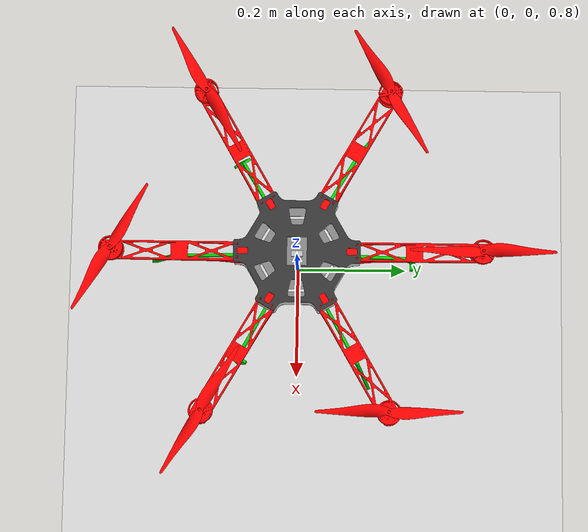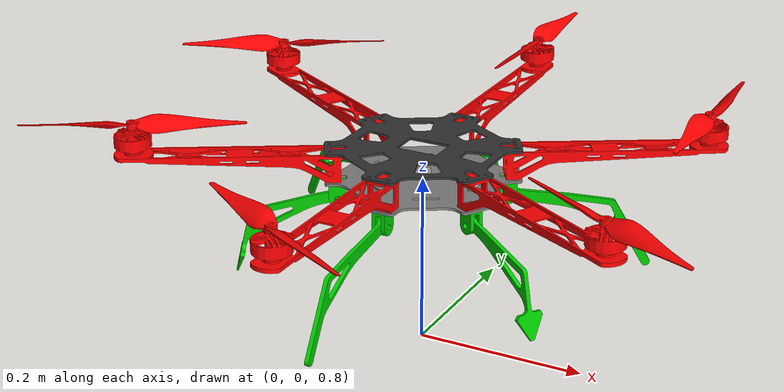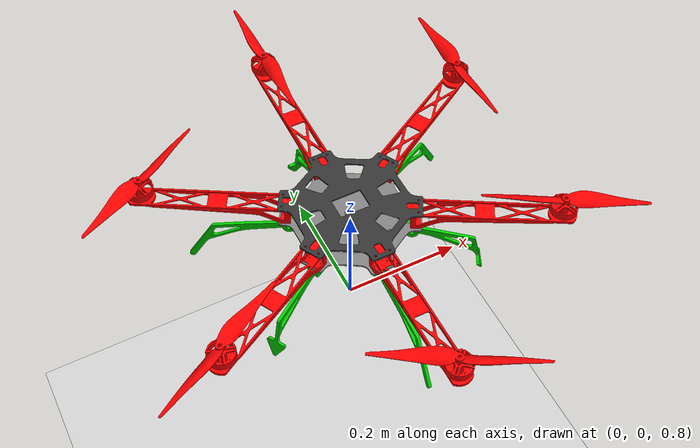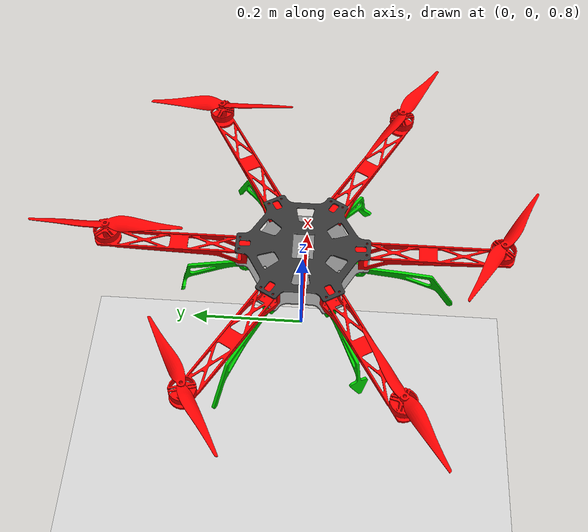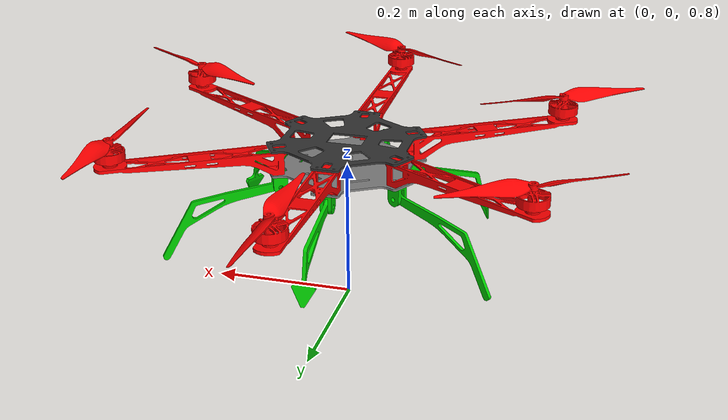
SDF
<?xml version="1.0"?>
<sdf version="1.9">
  <world name="default">
    <!-- Spherical coordinates for GPS -->
    <spherical_coordinates>
      <surface_model>EARTH_WGS84</surface_model>
      <latitude_deg>37.4223</latitude_deg>
      <longitude_deg>-122.0844</longitude_deg>
      <elevation>0</elevation>
      <heading_deg>0</heading_deg>
    </spherical_coordinates>

    <!-- Add proper lighting -->
    <light type="directional" name="sun">
      <cast_shadows>true</cast_shadows>
      <pose>0 0 10 0 0 0</pose>
      <diffuse>0.8 0.8 0.8 1</diffuse>
      <specular>0.2 0.2 0.2 1</specular>
      <attenuation>
        <range>1000</range>
        <constant>0.9</constant>
        <linear>0.01</linear>
        <quadratic>0.001</quadratic>
      </attenuation>
      <direction>-0.5 0.1 -0.9</direction>
    </light>

    <!-- Add ground plane -->
    <model name="ground_plane">
      <static>true</static>
      <link name="link">
        <collision name="collision">
          <geometry>
            <plane>
              <normal>0 0 1</normal>
              <size>100 100</size>
            </plane>
          </geometry>
        </collision>
        <visual name="visual">
          <geometry>
            <plane>
              <normal>0 0 1</normal>
              <size>100 100</size>
            </plane>
          </geometry>
          <material>
            <ambient>0.8 0.8 0.8 1</ambient>
            <diffuse>0.8 0.8 0.8 1</diffuse>
            <specular>0.8 0.8 0.8 1</specular>
          </material>
        </visual>
      </link>
    </model>

    <!-- Add sky and scene settings -->
    <scene>
      <sky>
        <clouds>
          <speed>12</speed>
        </clouds>
      </sky>
      <ambient>0.4 0.4 0.4 1</ambient>
      <background>0.7 0.7 1.0 1</background>
      <shadows>true</shadows>
    </scene>

    <!-- Your hexacopter -->
    <include>
      <uri>file://f550</uri>
      <pose>0 0 1.0 0 0 0</pose>
    </include>

  </world>
</sdf>

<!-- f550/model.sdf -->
<sdf version="1.9">
  <model name="f550">
    <static>false</static>
    <pose>0 0 0 0 0 0</pose>

<!-- ######################################## LOWER_PLATE # ######################################## -->
    <link name="base_link">
	<gravity>true</gravity>
	<pose>0 0 0.0015 0 0 0</pose>

      <inertial>
  <pose>0.00 0 -0.00 0 -0 0</pose>
        <mass>0.6</mass>
        <inertia>
          <ixx>0.011</ixx>
          <ixy>0</ixy>
          <ixz>0</ixz>
          <iyy>0.015</iyy>
          <iyz>0</iyz>
          <izz>0.021</izz>
        </inertia>
      </inertial>

      <collision name="base_link_collision">
        <geometry>
          <cylinder>
            <radius>0.15</radius>
            <length>0.003</length>
          </cylinder>
        </geometry>
      </collision>

      <visual name="base_link_visual">
        <geometry>
          <mesh>
            <scale>0.001 0.001 0.001</scale>
            <uri>file://f550/meshes/Lower_plate_CG.STL</uri>
          </mesh>
        </geometry>
        <material>
          <ambient>0.3 0.3 0.3 1</ambient>
          <diffuse>0.5 0.5 0.5 1</diffuse>
          <specular>0.8 0.8 0.8 1</specular>
        </material>
      </visual>

      <!-- IMU Sensor at ~200 Hz -->
      <sensor name="imu_sensor" type="imu">
        <pose>0 0 0.02 0 0 0</pose>
        <always_on>true</always_on>
        <update_rate>200</update_rate>
        <imu>
          <angular_velocity>
            <x>
              <noise type="gaussian">
                <mean>0.0</mean>
                <stddev>2e-4</stddev>
              </noise>
            </x>
            <y>
              <noise type="gaussian">
                <mean>0.0</mean>
                <stddev>2e-4</stddev>
              </noise>
            </y>
            <z>
              <noise type="gaussian">
                <mean>0.0</mean>
                <stddev>2e-4</stddev>
              </noise>
            </z>
          </angular_velocity>
          <linear_acceleration>
            <x>
              <noise type="gaussian">
                <mean>0.0</mean>
                <stddev>1.7e-2</stddev>
              </noise>
            </x>
            <y>
              <noise type="gaussian">
                <mean>0.0</mean>
                <stddev>1.7e-2</stddev>
              </noise>
            </y>
            <z>
              <noise type="gaussian">
                <mean>0.0</mean>
                <stddev>1.7e-2</stddev>
              </noise>
            </z>
          </linear_acceleration>
        </imu>
      </sensor>

      <!-- Air Pressure Sensor (Barometer) at ~50 Hz -->
      <sensor name="air_pressure_sensor" type="air_pressure">
        <pose>0 0 0.025 0 0 0</pose>
        <always_on>true</always_on>
        <update_rate>50</update_rate>
        <air_pressure>
          <reference_altitude>0</reference_altitude>
        </air_pressure>
      </sensor>

      <!-- GPS/NavSat Sensor at ~10 Hz -->
      <sensor name="gps_sensor" type="navsat">
        <pose>0 0 0.03 0 0 0</pose>
        <always_on>true</always_on>
        <update_rate>10</update_rate>
        <navsat>
          <position_sensing>
            <horizontal>
              <noise type="gaussian">
                <mean>0.0</mean>
                <stddev>1.0</stddev>
              </noise>
            </horizontal>
            <vertical>
              <noise type="gaussian">
                <mean>0.0</mean>
                <stddev>1.0</stddev>
              </noise>
            </vertical>
          </position_sensing>
          <velocity_sensing>
            <horizontal>
              <noise type="gaussian">
                <mean>0.0</mean>
                <stddev>0.1</stddev>
              </noise>
            </horizontal>
            <vertical>
              <noise type="gaussian">
                <mean>0.0</mean>
                <stddev>0.1</stddev>
              </noise>
            </vertical>
          </velocity_sensing>
        </navsat>
      </sensor>

      <!-- RGB Camera Sensor at ~15 Hz -->
    </link>
<!-- ####################################### /LOWER_PLATE # ######################################## -->

<!-- ######################################## TOP_PLATE ############################################ -->
    <link name="Top_plate_link">
	<gravity>true</gravity>
	<pose>0 0 0.0375 0 0 2.09439510239</pose>

      <inertial>
        <mass>0.1</mass>
        <inertia>
          <ixx>0.001</ixx>
          <ixy>0</ixy>
          <ixz>0</ixz>
          <iyy>0.001</iyy>
          <iyz>0</iyz>
          <izz>0.001</izz>
        </inertia>
      </inertial>

      <collision name="top_plate_collision">
        <geometry>
          <cylinder>
            <radius>0.12</radius>
            <length>0.003</length>
          </cylinder>
        </geometry>
      </collision>

      <visual name="visual_Top_plate">
        <geometry>
          <mesh>
            <scale>0.001 0.001 0.001</scale>
            <uri>file://f550/meshes/Top_plate_CG.STL</uri>
          </mesh>
        </geometry>
        <material>
          <ambient>0.1 0.1 0.1 1</ambient>
          <diffuse>0.2 0.2 0.2 1</diffuse>
          <specular>0.9 0.9 0.9 1</specular>
        </material>
      </visual>
    </link>

	<joint name='Lower_Top_joint' type='fixed'>
	  	<child>Top_plate_link</child>
	  	<parent>base_link</parent>
	</joint>
<!-- ####################################### /TOP_PLATE ############################################ -->

<!-- ##########################################  CAMERA  ########################################### -->

<!-- ##########################################  /CAMERA  ########################################## -->

<!-- ##########################################  IMU  ############################################## -->
    <link name='imu_link'>
      <pose>0 0 0 0 0 3.1415927</pose>
      <inertial>
        <pose>0 0 0 0 -0 0</pose>
        <mass>0.015</mass>
        <inertia>
          <ixx>1e-05</ixx>
          <ixy>0</ixy>
          <ixz>0</ixz>
          <iyy>1e-05</iyy>
          <iyz>0</iyz>
          <izz>1e-05</izz>
        </inertia>
      </inertial>

      <visual name="visual_imu">
	      <pose>0 0 0 0 0 3.1415927</pose>
        <geometry>
          <box>
			<size>0.01 0.02 0.02</size>
          </box>
        </geometry>
      </visual>
    </link>

    <joint name='imu_joint' type='fixed'>
      <child>imu_link</child>
      <parent>base_link</parent>
    </joint>
<!-- #########################################  /IMU  ############################################## -->

<!-- ############################################# ARM1 ############################################ -->
    <link name="Arm1_link">
	<gravity>true</gravity>
	<pose>0 0.1874 0.009875004 0 0 1.57079632679</pose>

	<inertial>
	<mass>0.1</mass>
		<inertia>
			<ixx>0.001</ixx>
			<ixy>0</ixy>
			<ixz>0</ixz>
			<iyy>0.001</iyy>
			<iyz>0</iyz>
			<izz>0.001</izz>
		</inertia>
	</inertial>

	<collision name="collision_Arm1_box">
		<pose>-0.02 0 0.009 0 0 0</pose>
		<geometry>
			<box>
				<size>0.175 0.034 0.037</size>
			</box>
		</geometry>
	</collision>

	<collision name="collision_Arm1_cyl">
		<pose>0.09 0 0.02 0 0 0</pose>
		<geometry>
			<cylinder>
				<length>0.097</length>
				<radius>0.02</radius>
			</cylinder>
		</geometry>
	</collision>

	<collision name="collision_Arm1_motor">
		<pose>0.165 0 0.05 0 0 0</pose>
		<geometry>
			<cylinder>
				<length>0.03</length>
				<radius>0.014</radius>
			</cylinder>
		</geometry>
	</collision>

		<visual name="visual_Arm1">
			<geometry>
				<mesh>
					<scale>0.001 0.001 0.001</scale>
					<uri>file://f550/meshes/Arm_CG.STL</uri>
				</mesh>
			</geometry>
			<material>
        <ambient>0.8 0.0 0.0 1</ambient>
        <diffuse>1.0 0.0 0.0 1</diffuse>
        <specular>0.5 0.5 0.5 1</specular>
      </material>
		</visual>
	</link>

	<joint name='Lower_Arm1_joint' type='fixed'>
	  	<child>Arm1_link</child>
	  	<parent>base_link</parent>
	</joint>
<!-- ############################################ /ARM1 ############################################ -->

<!-- ############################################# ARM2 ############################################ -->
    <link name="Arm2_link">
	<gravity>true</gravity>
	<pose>0.162293160669 0.0937 0.009875004 0 0 0.523598775598</pose>

      <inertial>
        <mass>0.1</mass>
        <inertia>
          <ixx>0.001</ixx>
          <ixy>0</ixy>
          <ixz>0</ixz>
          <iyy>0.001</iyy>
          <iyz>0</iyz>
          <izz>0.001</izz>
        </inertia>
      </inertial>

      <collision name="collision_Arm2_box">
        <pose>-0.02 0 0.009 0 0 0</pose>
        <geometry>
          <box>
            <size>0.175 0.034 0.037</size>
          </box>
        </geometry>
      </collision>

      <collision name="collision_Arm2_cyl">
        <pose>0.09 0 0.02 0 0 0</pose>
        <geometry>
          <cylinder>
            <length>0.097</length>
            <radius>0.02</radius>
          </cylinder>
        </geometry>
      </collision>

      <collision name="collision_Arm2_motor">
        <pose>0.165 0 0.05 0 0 0</pose>
        <geometry>
          <cylinder>
            <length>0.03</length>
            <radius>0.014</radius>
          </cylinder>
        </geometry>
      </collision>

      <visual name="visual_Arm2">
        <geometry>
          <mesh>
            <scale>0.001 0.001 0.001</scale>
            <uri>file://f550/meshes/Arm_CG.STL</uri>
          </mesh>
        </geometry>
        <material>
          <ambient>0.8 0.0 0.0 1</ambient>
          <diffuse>1.0 0.0 0.0 1</diffuse>
          <specular>0.5 0.5 0.5 1</specular>
        </material>
      </visual>
    </link>

	<joint name='Lower_Arm2_joint' type='fixed'>
	  	<child>Arm2_link</child>
	  	<parent>base_link</parent>
	</joint>
<!-- ############################################ /ARM2 ############################################ -->

<!-- ############################################# ARM3 ############################################ -->
    <link name="Arm3_link">
	<gravity>true</gravity>
	<pose>0.162293160669 -0.0937 0.009875004 0 0 -0.523598775598</pose>

      <inertial>
        <mass>0.1</mass>
        <inertia>
          <ixx>0.001</ixx>
          <ixy>0</ixy>
          <ixz>0</ixz>
          <iyy>0.001</iyy>
          <iyz>0</iyz>
          <izz>0.001</izz>
        </inertia>
      </inertial>

      <collision name="collision_Arm3_box">
        <pose>-0.02 0 0.009 0 0 0</pose>
        <geometry>
          <box>
            <size>0.175 0.034 0.037</size>
          </box>
        </geometry>
      </collision>

      <collision name="collision_Arm3_cyl">
        <pose>0.09 0 0.02 0 0 0</pose>
        <geometry>
          <cylinder>
            <length>0.097</length>
            <radius>0.02</radius>
          </cylinder>
        </geometry>
      </collision>

      <collision name="collision_Arm3_motor">
        <pose>0.165 0 0.05 0 0 0</pose>
        <geometry>
          <cylinder>
            <length>0.03</length>
            <radius>0.014</radius>
          </cylinder>
        </geometry>
      </collision>

      <visual name="visual_Arm3">
        <geometry>
          <mesh>
            <scale>0.001 0.001 0.001</scale>
            <uri>file://f550/meshes/Arm_CG.STL</uri>
          </mesh>
        </geometry>
        <material>
          <ambient>0.8 0.0 0.0 1</ambient>
          <diffuse>1.0 0.0 0.0 1</diffuse>
          <specular>0.5 0.5 0.5 1</specular>
        </material>
      </visual>
    </link>

	<joint name='Lower_Arm3_joint' type='fixed'>
	  	<child>Arm3_link</child>
	  	<parent>base_link</parent>
	</joint>
<!-- ############################################ /ARM3 ############################################ -->

<!-- ############################################# ARM4 ############################################ -->
    <link name="Arm4_link">
	<gravity>true</gravity>
	<pose>0 -0.1874 0.009875004 0 0 -1.57079632679</pose>

      <inertial>
        <mass>0.1</mass>
        <inertia>
          <ixx>0.001</ixx>
          <ixy>0</ixy>
          <ixz>0</ixz>
          <iyy>0.001</iyy>
          <iyz>0</iyz>
          <izz>0.001</izz>
        </inertia>
      </inertial>

      <collision name="collision_Arm4_box">
        <pose>-0.02 0 0.009 0 0 0</pose>
        <geometry>
          <box>
            <size>0.175 0.034 0.037</size>
          </box>
        </geometry>
      </collision>

      <collision name="collision_Arm4_cyl">
        <pose>0.09 0 0.02 0 0 0</pose>
        <geometry>
          <cylinder>
            <length>0.097</length>
            <radius>0.02</radius>
          </cylinder>
        </geometry>
      </collision>

      <collision name="collision_Arm4_motor">
        <pose>0.165 0 0.05 0 0 0</pose>
        <geometry>
          <cylinder>
            <length>0.03</length>
            <radius>0.014</radius>
          </cylinder>
        </geometry>
      </collision>

      <visual name="visual_Arm4">
        <geometry>
          <mesh>
            <scale>0.001 0.001 0.001</scale>
            <uri>file://f550/meshes/Arm_CG.STL</uri>
          </mesh>
        </geometry>
        <material>
          <ambient>0.8 0.0 0.0 1</ambient>
          <diffuse>1.0 0.0 0.0 1</diffuse>
          <specular>0.5 0.5 0.5 1</specular>
        </material>
      </visual>
    </link>

	<joint name='Lower_Arm4_joint' type='fixed'>
	  	<child>Arm4_link</child>
	  	<parent>base_link</parent>
	</joint>
<!-- ############################################ /ARM4 ############################################ -->

<!-- ############################################# ARM5 ############################################ -->
    <link name="Arm5_link">
	<gravity>true</gravity>
	<pose>-0.162293160669 -0.0937 0.009875004 0 0 3.66519142919</pose>

      <inertial>
        <mass>0.1</mass>
        <inertia>
          <ixx>0.001</ixx>
          <ixy>0</ixy>
          <ixz>0</ixz>
          <iyy>0.001</iyy>
          <iyz>0</iyz>
          <izz>0.001</izz>
        </inertia>
      </inertial>

      <collision name="collision_Arm5_box">
        <pose>-0.02 0 0.009 0 0 0</pose>
        <geometry>
          <box>
            <size>0.175 0.034 0.037</size>
          </box>
        </geometry>
      </collision>

      <collision name="collision_Arm5_cyl">
        <pose>0.09 0 0.02 0 0 0</pose>
        <geometry>
          <cylinder>
            <length>0.097</length>
            <radius>0.02</radius>
          </cylinder>
        </geometry>
      </collision>

      <collision name="collision_Arm5_motor">
        <pose>0.165 0 0.05 0 0 0</pose>
        <geometry>
          <cylinder>
            <length>0.03</length>
            <radius>0.014</radius>
          </cylinder>
        </geometry>
      </collision>

      <visual name="visual_Arm5">
        <geometry>
          <mesh>
            <scale>0.001 0.001 0.001</scale>
            <uri>file://f550/meshes/Arm_CG.STL</uri>
          </mesh>
        </geometry>
        <material>
          <ambient>0.8 0.0 0.0 1</ambient>
          <diffuse>1.0 0.0 0.0 1</diffuse>
          <specular>0.5 0.5 0.5 1</specular>
        </material>
      </visual>
    </link>

	<joint name='Lower_Arm5_joint' type='fixed'>
	  	<child>Arm5_link</child>
	  	<parent>base_link</parent>
	</joint>
<!-- ############################################ /ARM5 ############################################ -->

<!-- ############################################# ARM6 ############################################ -->
    <link name="Arm6_link">
	<gravity>true</gravity>
	<pose>-0.162293160669 0.0937 0.009875004 0 0 2.61799387799</pose>

      <inertial>
        <mass>0.1</mass>
        <inertia>
          <ixx>0.001</ixx>
          <ixy>0</ixy>
          <ixz>0</ixz>
          <iyy>0.001</iyy>
          <iyz>0</iyz>
          <izz>0.001</izz>
        </inertia>
      </inertial>

      <collision name="collision_Arm6_box">
        <pose>-0.02 0 0.009 0 0 0</pose>
        <geometry>
          <box>
            <size>0.175 0.034 0.037</size>
          </box>
        </geometry>
      </collision>

      <collision name="collision_Arm6_cyl">
        <pose>0.09 0 0.02 0 0 0</pose>
        <geometry>
          <cylinder>
            <length>0.097</length>
            <radius>0.02</radius>
          </cylinder>
        </geometry>
      </collision>

      <collision name="collision_Arm6_motor">
        <pose>0.165 0 0.05 0 0 0</pose>
        <geometry>
          <cylinder>
            <length>0.03</length>
            <radius>0.014</radius>
          </cylinder>
        </geometry>
      </collision>

      <visual name="visual_Arm6">
        <geometry>
          <mesh>
            <scale>0.001 0.001 0.001</scale>
            <uri>file://f550/meshes/Arm_CG.STL</uri>
          </mesh>
        </geometry>
        <material>
          <ambient>0.8 0.0 0.0 1</ambient>
          <diffuse>1.0 0.0 0.0 1</diffuse>
          <specular>0.5 0.5 0.5 1</specular>
        </material>
      </visual>
    </link>

	<joint name='Lower_Arm6_joint' type='fixed'>
	  	<child>Arm6_link</child>
	  	<parent>base_link</parent>
	</joint>
<!-- ############################################ /ARM6 ############################################ -->

<!-- #########################################  ROTOR0  ############################################ -->
<link name='rotor_0'>
  <pose>-0.279726205 0.1615 0.07 0 0 2.09439510239</pose>
      <inertial>
        <mass>0.005</mass>
        <inertia>
          <ixx>9.75e-07</ixx>
          <ixy>0</ixy>
          <ixz>0</ixz>
          <iyy>0.000273104</iyy>
          <iyz>0</iyz>
          <izz>0.000274004</izz>
        </inertia>
      </inertial>

	  <collision name='rotor_0_collision'>
        <geometry>
          <cylinder>
            <length>0.005</length>
            <radius>0.128</radius>
          </cylinder>
        </geometry>
        <surface>
          <contact>
            <ode/>
          </contact>
          <friction>
            <ode/>
          </friction>
        </surface>
      </collision>

      <visual name='rotor_0_visual'>
        <geometry>
          <mesh>
            <scale>0.001 0.001 0.001</scale>
            <uri>file://f550/meshes/prop_cw_CG.stl</uri>
          </mesh>
        </geometry>
        <material>
          <ambient>0.8 0.0 0.0 1</ambient>
          <diffuse>1.0 0.0 0.0 1</diffuse>
          <specular>0.5 0.5 0.5 1</specular>
        </material>
      </visual>
    </link>

    <joint name='rotor_0_joint' type='revolute'>
      <child>rotor_0</child>
      <parent>base_link</parent>
      <axis>
  <xyz expressed_in="__model__">0 0 1</xyz>
        <limit>
          <lower>-1e+16</lower>
          <upper>1e+16</upper>
          <!-- Increased effort limit to avoid artificial torque saturation during spin-up/control -->
          <effort>100000</effort>
          <!-- Set a large positive velocity limit to avoid artificial clamping -->
          <velocity>4000</velocity>
        </limit>
        <dynamics>
          <damping>0.005</damping>
        </dynamics>
      </axis>
      <physics>
        <ode>
          <implicit_spring_damper>1</implicit_spring_damper>
        </ode>
      </physics>
    </joint>
<!-- ########################################  /ROTOR0  ############################################ -->

<!-- #########################################  ROTOR1  ############################################ -->
<link name='rotor_1'>
  <pose>0.279726205 -0.1615 0.07 0 0 -2.09439510239</pose>
      <inertial>
        <mass>0.005</mass>
        <inertia>
          <ixx>9.75e-07</ixx>
          <ixy>0</ixy>
          <ixz>0</ixz>
          <iyy>0.000273104</iyy>
          <iyz>0</iyz>
          <izz>0.000274004</izz>
        </inertia>
      </inertial>

      <collision name='rotor_1_collision'>
        <geometry>
          <cylinder>
            <length>0.005</length>
            <radius>0.128</radius>
          </cylinder>
        </geometry>
        <surface>
          <contact>
            <ode/>
          </contact>
          <friction>
            <ode/>
          </friction>
        </surface>
      </collision>

      <visual name='rotor_1_visual'>
        <geometry>
          <mesh>
            <scale>0.001 0.001 0.001</scale>
            <uri>file://f550/meshes/prop_ccw_CG.stl</uri>
          </mesh>
        </geometry>
        <material>
          <ambient>0.8 0.0 0.0 1</ambient>
          <diffuse>1.0 0.0 0.0 1</diffuse>
          <specular>0.5 0.5 0.5 1</specular>
        </material>
      </visual>
    </link>

    <joint name='rotor_1_joint' type='revolute'>
      <child>rotor_1</child>
      <parent>base_link</parent>
      <axis>
  <xyz expressed_in="__model__">0 0 1</xyz>
        <limit>
          <lower>-1e+16</lower>
          <upper>1e+16</upper>
          <effort>100000</effort>
          <velocity>4000</velocity>
        </limit>
        <dynamics>
          <damping>0.005</damping>
        </dynamics>
      </axis>
      <physics>
        <ode>
          <implicit_spring_damper>1</implicit_spring_damper>
        </ode>
      </physics>
    </joint>
<!-- ########################################  /ROTOR1  ############################################ -->

<!-- #########################################  ROTOR2  ############################################ -->
<link name='rotor_2'>
  <pose>-0.279726205 -0.1615 0.07 0 0 2.09439510239</pose>
      <inertial>
        <mass>0.005</mass>
        <inertia>
          <ixx>9.75e-07</ixx>
          <ixy>0</ixy>
          <ixz>0</ixz>
          <iyy>0.000273104</iyy>
          <iyz>0</iyz>
          <izz>0.000274004</izz>
        </inertia>
      </inertial>

      <collision name='rotor_2_collision'>
        <geometry>
          <cylinder>
            <length>0.005</length>
            <radius>0.128</radius>
          </cylinder>
        </geometry>
        <surface>
          <contact>
            <ode/>
          </contact>
          <friction>
            <ode/>
          </friction>
        </surface>
      </collision>

      <visual name='rotor_2_visual'>
        <geometry>
          <mesh>
            <scale>0.001 0.001 0.001</scale>
            <uri>file://f550/meshes/prop_ccw_CG.stl</uri>
          </mesh>
        </geometry>
        <material>
          <ambient>0.8 0.0 0.0 1</ambient>
          <diffuse>1.0 0.0 0.0 1</diffuse>
          <specular>0.5 0.5 0.5 1</specular>
        </material>
      </visual>
    </link>

    <joint name='rotor_2_joint' type='revolute'>
      <child>rotor_2</child>
      <parent>base_link</parent>
      <axis>
  <xyz expressed_in="__model__">0 0 1</xyz>
        <limit>
          <lower>-1e+16</lower>
          <upper>1e+16</upper>
          <effort>100000</effort>
          <velocity>4000</velocity>
        </limit>
        <dynamics>
          <damping>0.005</damping>
        </dynamics>
      </axis>
      <physics>
        <ode>
          <implicit_spring_damper>1</implicit_spring_damper>
        </ode>
      </physics>
    </joint>
<!-- ########################################  /ROTOR2  ############################################ -->

<!-- #########################################  ROTOR3  ############################################ -->
<link name='rotor_3'>
  <pose>0.279726205 0.1615 0.07 0 0 0</pose>
      <inertial>
        <mass>0.005</mass>
        <inertia>
          <ixx>9.75e-07</ixx>
          <ixy>0</ixy>
          <ixz>0</ixz>
          <iyy>0.000273104</iyy>
          <iyz>0</iyz>
          <izz>0.000274004</izz>
        </inertia>
      </inertial>

      <collision name='rotor_3_collision'>
        <geometry>
          <cylinder>
            <length>0.005</length>
            <radius>0.128</radius>
          </cylinder>
        </geometry>
        <surface>
          <contact>
            <ode/>
          </contact>
          <friction>
            <ode/>
          </friction>
        </surface>
      </collision>

      <visual name='rotor_3_visual'>
        <geometry>
          <mesh>
            <scale>0.001 0.001 0.001</scale>
            <uri>file://f550/meshes/prop_cw_CG.stl</uri>
          </mesh>
        </geometry>
        <material>
          <ambient>0.8 0.0 0.0 1</ambient>
          <diffuse>1.0 0.0 0.0 1</diffuse>
          <specular>0.5 0.5 0.5 1</specular>
        </material>
      </visual>
    </link>

    <joint name='rotor_3_joint' type='revolute'>
      <child>rotor_3</child>
      <parent>base_link</parent>
      <axis>
  <xyz expressed_in="__model__">0 0 1</xyz>
        <limit>
          <lower>-1e+16</lower>
          <upper>1e+16</upper>
          <effort>100000</effort>
          <velocity>4000</velocity>
        </limit>
        <dynamics>
          <damping>0.005</damping>
        </dynamics>
      </axis>
      <physics>
        <ode>
          <implicit_spring_damper>1</implicit_spring_damper>
        </ode>
      </physics>
    </joint>
<!-- ########################################  /ROTOR3  ############################################ -->

<!-- #########################################  ROTOR4  ############################################ -->
<link name='rotor_4'>
  <pose>0 0.323 0.07 0 0 0</pose>
      <inertial>
        <mass>0.005</mass>
        <inertia>
          <ixx>9.75e-07</ixx>
          <ixy>0</ixy>
          <ixz>0</ixz>
          <iyy>0.000273104</iyy>
          <iyz>0</iyz>
          <izz>0.000274004</izz>
        </inertia>
      </inertial>

      <collision name='rotor_4_collision'>
        <geometry>
          <cylinder>
            <length>0.005</length>
            <radius>0.128</radius>
          </cylinder>
        </geometry>
        <surface>
          <contact>
            <ode/>
          </contact>
          <friction>
            <ode/>
          </friction>
        </surface>
      </collision>

      <visual name='rotor_4_visual'>
        <geometry>
          <mesh>
            <scale>0.001 0.001 0.001</scale>
            <uri>file://f550/meshes/prop_ccw_CG.stl</uri>
          </mesh>
        </geometry>
        <material>
          <ambient>0.8 0.0 0.0 1</ambient>
          <diffuse>1.0 0.0 0.0 1</diffuse>
          <specular>0.5 0.5 0.5 1</specular>
        </material>
      </visual>
    </link>

    <joint name='rotor_4_joint' type='revolute'>
      <child>rotor_4</child>
      <parent>base_link</parent>
      <axis>
  <xyz expressed_in="__model__">0 0 1</xyz>
        <limit>
          <lower>-1e+16</lower>
          <upper>1e+16</upper>
          <effort>100000</effort>
          <velocity>4000</velocity>
        </limit>
        <dynamics>
          <damping>0.005</damping>
        </dynamics>
      </axis>
      <physics>
        <ode>
          <implicit_spring_damper>1</implicit_spring_damper>
        </ode>
      </physics>
    </joint>
<!-- ########################################  /ROTOR4  ############################################ -->

<!-- #########################################  ROTOR5  ############################################ -->
<link name='rotor_5'>
  <pose>0 -0.323 0.07 0 0 -2.09439510239</pose>
      <inertial>
        <mass>0.005</mass>
        <inertia>
          <ixx>9.75e-07</ixx>
          <ixy>0</ixy>
          <ixz>0</ixz>
          <iyy>0.000273104</iyy>
          <iyz>0</iyz>
          <izz>0.000274004</izz>
        </inertia>
      </inertial>

      <collision name='rotor_5_collision'>
        <geometry>
          <cylinder>
            <length>0.005</length>
            <radius>0.128</radius>
          </cylinder>
        </geometry>
        <surface>
          <contact>
            <ode/>
          </contact>
          <friction>
            <ode/>
          </friction>
        </surface>
      </collision>

      <visual name='rotor_5_visual'>
        <geometry>
          <mesh>
            <scale>0.001 0.001 0.001</scale>
            <!-- Use clockwise prop mesh to alternate torque (rotors 0,3,5 cw; 1,2,4 ccw) -->
            <uri>file://f550/meshes/prop_cw_CG.stl</uri>
          </mesh>
        </geometry>
        <material>
          <ambient>0.8 0.0 0.0 1</ambient>
          <diffuse>1.0 0.0 0.0 1</diffuse>
          <specular>0.5 0.5 0.5 1</specular>
        </material>
      </visual>
    </link>

    <joint name='rotor_5_joint' type='revolute'>
      <child>rotor_5</child>
      <parent>base_link</parent>
      <axis>
  <xyz expressed_in="__model__">0 0 1</xyz>
        <limit>
          <lower>-1e+16</lower>
          <upper>1e+16</upper>
          <effort>100000</effort>
          <velocity>4000</velocity>
        </limit>
        <dynamics>
          <damping>0.005</damping>
        </dynamics>
      </axis>
      <physics>
        <ode>
          <implicit_spring_damper>1</implicit_spring_damper>
        </ode>
      </physics>
    </joint>
<!-- ########################################  /ROTOR5  ############################################ -->

<!-- ######################################### grip1 ############################################### -->

        <link name="cylinder1">
            <pose>0 -0.0967 0 0 0 0</pose>
            <inertial>
                <mass>0.01</mass>
                <inertia>
                    <ixx>0.01</ixx>
                    <ixy>0</ixy>
                    <ixz>0</ixz>
                    <iyy>0.01</iyy>
                    <iyz>0</iyz>
                    <izz>0.01</izz>
                </inertia>
            </inertial>

            <collision name="collision">
                <geometry>
                    <cylinder>
                        <radius>0.008</radius>
                        <length>0.025</length>
                    </cylinder>
                </geometry>
            </collision>

			<visual name="visual">
				<geometry>
					<mesh>
						<scale>0.001 0.001 0.001</scale>
						<uri>file://f550/meshes/cylinder.stl</uri>
					</mesh>
				</geometry>
        <material>
          <ambient>0.0 0.6 0.0 1</ambient>
          <diffuse>0.0 0.8 0.0 1</diffuse>
          <specular>0.4 0.4 0.4 1</specular>
        </material>
			</visual>
			</link>

        <joint name="base_link_cylinder1" type="fixed">
            <child>cylinder1</child>
            <parent>base_link</parent>
        </joint>

        <link name="grip1">
            <pose>0 -0.0967 -0.02 0 0 0</pose>
            <inertial>
                <mass>0.01</mass>
                <inertia>
                    <ixx>0.01</ixx>
                    <ixy>0</ixy>
                    <ixz>0</ixz>
                    <iyy>0.01</iyy>
                    <iyz>0</iyz>
                    <izz>0.01</izz>
                </inertia>
            </inertial>

            <collision name="collision">
				<geometry>
					<box>
						<size>0.08 0.015 0.015</size>
					</box>
				</geometry>
				<surface>
					<contact>
						<ode>
							<min_depth>0.001</min_depth>
						</ode>
					</contact>
					<friction>
						<ode>
							<mu>50</mu>
							<mu2>50</mu2>
						</ode>
					</friction>
				</surface>
            </collision>

            <visual name="visual">
				<geometry>
					<mesh>
						<scale>0.001 0.001 0.001</scale>
						<uri>file://f550/meshes/grip_long.stl</uri>
					</mesh>
				</geometry>
        <material>
          <ambient>0.0 0.6 0.0 1</ambient>
          <diffuse>0.0 0.8 0.0 1</diffuse>
          <specular>0.4 0.4 0.4 1</specular>
        </material>
            </visual>
        </link>

        <joint name="cylinder_grip1" type="revolute">
            <pose>0 0 0 0 0 0</pose>
            <child>grip1</child>
            <parent>cylinder1</parent>
            <axis>
                <xyz>1 0 0</xyz>
				<limit>
					<lower>0.00</lower>
					<upper>1.570</upper>
					<velocity>1</velocity>
				</limit>
				<dynamics>
					<damping>5</damping>
					<friction>0.5</friction>
				</dynamics>
			</axis>
      <physics>
        <ode>
          <implicit_spring_damper>1</implicit_spring_damper>
        </ode>
      </physics>
        </joint>

<!-- ######################################### /grip1 ############################################### -->

<!-- ######################################### grip2 ############################################### -->

        <link name="cylinder2">
            <pose>0.0837446656546 0.04835 0 0 0 2.09439510239</pose>
            <inertial>
                <mass>0.01</mass>
                <inertia>
                    <ixx>0.01</ixx>
                    <ixy>0</ixy>
                    <ixz>0</ixz>
                    <iyy>0.01</iyy>
                    <iyz>0</iyz>
                    <izz>0.01</izz>
                </inertia>
            </inertial>

            <collision name="collision">
                <geometry>
                    <cylinder>
                        <radius>0.008</radius>
                        <length>0.025</length>
                    </cylinder>
                </geometry>
            </collision>

			<visual name="visual">
				<geometry>
					<mesh>
						<scale>0.001 0.001 0.001</scale>
						<uri>file://f550/meshes/cylinder.stl</uri>
					</mesh>
				</geometry>
        <material>
          <ambient>0.0 0.6 0.0 1</ambient>
          <diffuse>0.0 0.8 0.0 1</diffuse>
          <specular>0.4 0.4 0.4 1</specular>
        </material>
			</visual>
			</link>

        <joint name="base_link_cylinder2" type="fixed">
            <child>cylinder2</child>
            <parent>base_link</parent>
        </joint>

        <link name="grip2">
            <pose>0.0837446656546 0.04835 -0.02 0 0 2.09439510239</pose>
            <inertial>
                <mass>0.01</mass>
                <inertia>
                    <ixx>0.01</ixx>
                    <ixy>0</ixy>
                    <ixz>0</ixz>
                    <iyy>0.01</iyy>
                    <iyz>0</iyz>
                    <izz>0.01</izz>
                </inertia>
            </inertial>

            <collision name="collision">
				<geometry>
					<box>
						<size>0.08 0.015 0.015</size>
					</box>
				</geometry>
				<surface>
					<contact>
						<ode>
							<min_depth>0.001</min_depth>
						</ode>
					</contact>
					<friction>
						<ode>
							<mu>50</mu>
							<mu2>50</mu2>
						</ode>
					</friction>
				</surface>
            </collision>

            <visual name="visual">
				<geometry>
					<mesh>
						<scale>0.001 0.001 0.001</scale>
						<uri>file://f550/meshes/grip_long.stl</uri>
					</mesh>
				</geometry>
        <material>
          <ambient>0.0 0.6 0.0 1</ambient>
          <diffuse>0.0 0.8 0.0 1</diffuse>
          <specular>0.4 0.4 0.4 1</specular>
        </material>
            </visual>
        </link>

        <joint name="cylinder_grip2" type="revolute">
            <pose>0 0 0 0 0 0</pose>
            <child>grip2</child>
            <parent>cylinder2</parent>
            <axis>
                <xyz>1 0 0</xyz>
				<limit>
					<lower>0.00</lower>
					<upper>1.570</upper>
					<velocity>1</velocity>
				</limit>
				<dynamics>
					<damping>5</damping>
					<friction>0.5</friction>
				</dynamics>
			</axis>
      <physics>
        <ode>
          <implicit_spring_damper>1</implicit_spring_damper>
        </ode>
      </physics>
        </joint>

<!-- ######################################### /grip2 ############################################### -->

<!-- ######################################### grip3 ############################################### -->

        <link name="cylinder3">
            <pose>0.0837446656546 -0.04835 0 0 0 1.0471975512</pose>
            <inertial>
                <mass>0.01</mass>
                <inertia>
                    <ixx>0.01</ixx>
                    <ixy>0</ixy>
                    <ixz>0</ixz>
                    <iyy>0.01</iyy>
                    <iyz>0</iyz>
                    <izz>0.01</izz>
                </inertia>
            </inertial>

            <collision name="collision">
                <geometry>
                    <cylinder>
                        <radius>0.008</radius>
                        <length>0.025</length>
                    </cylinder>
                </geometry>
            </collision>

			<visual name="visual">
				<geometry>
					<mesh>
						<scale>0.001 0.001 0.001</scale>
						<uri>file://f550/meshes/cylinder.stl</uri>
					</mesh>
				</geometry>
        <material>
          <ambient>0.0 0.6 0.0 1</ambient>
          <diffuse>0.0 0.8 0.0 1</diffuse>
          <specular>0.4 0.4 0.4 1</specular>
        </material>
			</visual>
			</link>

        <joint name="base_link_cylinder3" type="fixed">
            <child>cylinder3</child>
            <parent>base_link</parent>
        </joint>

        <link name="grip3">
            <pose>0.0837446656546 -0.04835 -0.02 0 0 1.0471975512</pose>
            <inertial>
                <mass>0.01</mass>
                <inertia>
                    <ixx>0.01</ixx>
                    <ixy>0</ixy>
                    <ixz>0</ixz>
                    <iyy>0.01</iyy>
                    <iyz>0</iyz>
                    <izz>0.01</izz>
                </inertia>
            </inertial>

            <collision name="collision">
				<geometry>
					<box>
						<size>0.06 0.015 0.015</size>
					</box>
				</geometry>
				<surface>
					<contact>
						<ode>
							<min_depth>0.001</min_depth>
						</ode>
					</contact>
					<friction>
						<ode>
							<mu>50</mu>
							<mu2>50</mu2>
						</ode>
					</friction>
				</surface>
            </collision>

            <visual name="visual">
				<geometry>
					<mesh>
						<scale>0.001 0.001 0.001</scale>
						<uri>file://f550/meshes/grip.stl</uri>
					</mesh>
				</geometry>
        <material>
          <ambient>0.0 0.6 0.0 1</ambient>
          <diffuse>0.0 0.8 0.0 1</diffuse>
          <specular>0.4 0.4 0.4 1</specular>
        </material>
            </visual>
        </link>

        <joint name="cylinder_grip3" type="revolute">
            <pose>0 0 0 0 0 0</pose>
            <child>grip3</child>
            <parent>cylinder3</parent>
            <axis>
                <xyz>1 0 0</xyz>
				<limit>
					<lower>0.00</lower>
					<upper>1.570</upper>
					<velocity>1</velocity>
				</limit>
				<dynamics>
					<damping>5</damping>
					<friction>0.5</friction>
				</dynamics>
			</axis>
      <physics>
        <ode>
          <implicit_spring_damper>1</implicit_spring_damper>
        </ode>
      </physics>
        </joint>

<!-- ######################################### /grip3 ############################################### -->

<!-- ######################################### grip4 ############################################### -->

        <link name="cylinder4">
            <pose>0 0.0967 0 0 0 0</pose>
            <inertial>
                <mass>0.01</mass>
                <inertia>
                    <ixx>0.01</ixx>
                    <ixy>0</ixy>
                    <ixz>0</ixz>
                    <iyy>0.01</iyy>
                    <iyz>0</iyz>
                    <izz>0.01</izz>
                </inertia>
            </inertial>

            <collision name="collision">
                <geometry>
                    <cylinder>
                        <radius>0.008</radius>
                        <length>0.025</length>
                    </cylinder>
                </geometry>
            </collision>

			<visual name="visual">
				<geometry>
					<mesh>
						<scale>0.001 0.001 0.001</scale>
						<uri>file://f550/meshes/cylinder.stl</uri>
					</mesh>
				</geometry>
        <material>
          <ambient>0.0 0.6 0.0 1</ambient>
          <diffuse>0.0 0.8 0.0 1</diffuse>
          <specular>0.4 0.4 0.4 1</specular>
        </material>
			</visual>
			</link>

        <joint name="base_link_cylinder4" type="fixed">
            <child>cylinder4</child>
            <parent>base_link</parent>
        </joint>

        <link name="grip4">
            <pose>0 0.0967 -0.02 0 0 3.14159265359</pose>
            <inertial>
                <mass>0.01</mass>
                <inertia>
                    <ixx>0.01</ixx>
                    <ixy>0</ixy>
                    <ixz>0</ixz>
                    <iyy>0.01</iyy>
                    <iyz>0</iyz>
                    <izz>0.01</izz>
                </inertia>
            </inertial>

            <collision name="collision">
				<geometry>
					<box>
						<size>0.06 0.015 0.015</size>
					</box>
				</geometry>
				<surface>
					<contact>
						<ode>
							<min_depth>0.001</min_depth>
						</ode>
					</contact>
					<friction>
						<ode>
							<mu>50</mu>
							<mu2>50</mu2>
						</ode>
					</friction>
				</surface>
            </collision>

            <visual name="visual">
				<geometry>
					<mesh>
						<scale>0.001 0.001 0.001</scale>
						<uri>file://f550/meshes/grip.stl</uri>
					</mesh>
				</geometry>
        <material>
          <ambient>0.0 0.6 0.0 1</ambient>
          <diffuse>0.0 0.8 0.0 1</diffuse>
          <specular>0.4 0.4 0.4 1</specular>
        </material>
            </visual>
        </link>

        <joint name="cylinder_grip4" type="revolute">
            <pose>0 0 0 0 0 0</pose>
            <child>grip4</child>
            <parent>cylinder4</parent>
            <axis>
                <xyz>1 0 0</xyz>
				<limit>
					<lower>0.00</lower>
					<upper>1.570</upper>
					<velocity>1</velocity>
				</limit>
				<dynamics>
					<damping>5</damping>
					<friction>0.5</friction>
				</dynamics>
			</axis>
      <physics>
        <ode>
          <implicit_spring_damper>1</implicit_spring_damper>
        </ode>
      </physics>
        </joint>

<!-- ######################################### /grip4 ############################################### -->

<!-- ######################################### grip5 ############################################### -->

        <link name="cylinder5">
            <pose>-0.0837446656546 0.04835 0 0 0 4.18879020479</pose>
            <inertial>
                <mass>0.01</mass>
                <inertia>
                    <ixx>0.01</ixx>
                    <ixy>0</ixy>
                    <ixz>0</ixz>
                    <iyy>0.01</iyy>
                    <iyz>0</iyz>
                    <izz>0.01</izz>
                </inertia>
            </inertial>

            <collision name="collision">
                <geometry>
                    <cylinder>
                        <radius>0.008</radius>
                        <length>0.025</length>
                    </cylinder>
                </geometry>
            </collision>

			<visual name="visual">
				<geometry>
					<mesh>
						<scale>0.001 0.001 0.001</scale>
						<uri>file://f550/meshes/cylinder.stl</uri>
					</mesh>
				</geometry>
        <material>
          <ambient>0.0 0.6 0.0 1</ambient>
          <diffuse>0.0 0.8 0.0 1</diffuse>
          <specular>0.4 0.4 0.4 1</specular>
        </material>
			</visual>
			</link>

        <joint name="base_link_cylinder5" type="fixed">
            <child>cylinder5</child>
            <parent>base_link</parent>
        </joint>

        <link name="grip5">
            <pose>-0.0837446656546 0.04835 -0.02 0 0 4.18879020479</pose>
            <inertial>
                <mass>0.01</mass>
                <inertia>
                    <ixx>0.01</ixx>
                    <ixy>0</ixy>
                    <ixz>0</ixz>
                    <iyy>0.01</iyy>
                    <iyz>0</iyz>
                    <izz>0.01</izz>
                </inertia>
            </inertial>

            <collision name="collision">
				<geometry>
					<box>
						<size>0.08 0.015 0.015</size>
					</box>
				</geometry>
				<surface>
					<contact>
						<ode>
							<min_depth>0.001</min_depth>
						</ode>
					</contact>
					<friction>
						<ode>
							<mu>50</mu>
							<mu2>50</mu2>
						</ode>
					</friction>
				</surface>
            </collision>

            <visual name="visual">
				<geometry>
					<mesh>
						<scale>0.001 0.001 0.001</scale>
						<uri>file://f550/meshes/grip_long.stl</uri>
					</mesh>
				</geometry>
        <material>
          <ambient>0.0 0.6 0.0 1</ambient>
          <diffuse>0.0 0.8 0.0 1</diffuse>
          <specular>0.4 0.4 0.4 1</specular>
        </material>
            </visual>
        </link>

        <joint name="cylinder_grip5" type="revolute">
            <pose>0 0 0 0 0 0</pose>
            <child>grip5</child>
            <parent>cylinder5</parent>
            <axis>
                <xyz>1 0 0</xyz>
				<limit>
					<lower>0.00</lower>
					<upper>1.570</upper>
					<velocity>1</velocity>
				</limit>
				<dynamics>
					<damping>5</damping>
					<friction>0.5</friction>
				</dynamics>
			</axis>
      <physics>
        <ode>
          <implicit_spring_damper>1</implicit_spring_damper>
        </ode>
      </physics>
        </joint>

<!-- ######################################### /grip5 ############################################### -->

<!-- ######################################### grip6 ############################################### -->

        <link name="cylinder6">
            <pose>-0.0837446656546 -0.04835 0 0 0 -1.0471975512</pose>
            <inertial>
                <mass>0.01</mass>
                <inertia>
                    <ixx>0.01</ixx>
                    <ixy>0</ixy>
                    <ixz>0</ixz>
                    <iyy>0.01</iyy>
                    <iyz>0</iyz>
                    <izz>0.01</izz>
                </inertia>
            </inertial>

            <collision name="collision">
                <geometry>
                    <cylinder>
                        <radius>0.008</radius>
                        <length>0.025</length>
                    </cylinder>
                </geometry>
            </collision>

			<visual name="visual">
				<geometry>
					<mesh>
						<scale>0.001 0.001 0.001</scale>
						<uri>file://f550/meshes/cylinder.stl</uri>
					</mesh>
				</geometry>
        <material>
          <ambient>0.0 0.6 0.0 1</ambient>
          <diffuse>0.0 0.8 0.0 1</diffuse>
          <specular>0.4 0.4 0.4 1</specular>
        </material>
			</visual>
			</link>

        <joint name="base_link_cylinder6" type="fixed">
            <child>cylinder6</child>
            <parent>base_link</parent>
        </joint>

        <link name="grip6">
            <pose>-0.0837446656546 -0.04835 -0.02 0 0 -1.0471975512</pose>
            <inertial>
                <mass>0.01</mass>
                <inertia>
                    <ixx>0.01</ixx>
                    <ixy>0</ixy>
                    <ixz>0</ixz>
                    <iyy>0.01</iyy>
                    <iyz>0</iyz>
                    <izz>0.01</izz>
                </inertia>
            </inertial>

            <collision name="collision">
				<geometry>
					<box>
						<size>0.06 0.015 0.015</size>
					</box>
				</geometry>
				<surface>
					<contact>
						<ode>
							<min_depth>0.001</min_depth>
						</ode>
					</contact>
					<friction>
						<ode>
							<mu>50</mu>
							<mu2>50</mu2>
						</ode>
					</friction>
				</surface>
            </collision>

            <visual name="visual">
				<geometry>
					<mesh>
						<scale>0.001 0.001 0.001</scale>
						<uri>file://f550/meshes/grip.stl</uri>
					</mesh>
				</geometry>
        <material>
          <ambient>0.0 0.6 0.0 1</ambient>
          <diffuse>0.0 0.8 0.0 1</diffuse>
          <specular>0.4 0.4 0.4 1</specular>
        </material>
            </visual>
        </link>

        <joint name="cylinder_grip6" type="revolute">
            <pose>0 0 0 0 0 0</pose>
            <child>grip6</child>
            <parent>cylinder6</parent>
            <axis>
                <xyz>1 0 0</xyz>
				<limit>
					<lower>0.00</lower>
					<upper>1.570</upper>
					<velocity>1</velocity>
				</limit>
				<dynamics>
					<damping>5</damping>
					<friction>0.5</friction>
				</dynamics>
			</axis>
      <physics>
        <ode>
          <implicit_spring_damper>1</implicit_spring_damper>
        </ode>
      </physics>
        </joint>

        <!-- motor plugins -->

        <!-- Gazebo Harmonic Multicopter motor model plugins -->
        <plugin filename="gz-sim-multicopter-motor-model-system" name="gz::sim::systems::MulticopterMotorModel">
          <robotNamespace>f550</robotNamespace>
          <jointName>rotor_0_joint</jointName>
          <linkName>rotor_0</linkName>
          <turningDirection>cw</turningDirection>
          <timeConstantUp>0.0182</timeConstantUp>
          <timeConstantDown>0.0182</timeConstantDown>
          <maxRotVelocity>1744.0</maxRotVelocity>
          <motorConstant>1.91e-05</motorConstant>
          <momentConstant>0.0185</momentConstant>
          <commandSubTopic>command/motor_speed</commandSubTopic>
          <actuator_number>0</actuator_number>
          <rotorDragCoefficient>2.0e-04</rotorDragCoefficient>
          <rollingMomentCoefficient>0</rollingMomentCoefficient>
          <rotorVelocitySlowdownSim>1</rotorVelocitySlowdownSim>
          <motorType>velocity</motorType>
        </plugin>
        <plugin filename="gz-sim-multicopter-motor-model-system" name="gz::sim::systems::MulticopterMotorModel">
          <robotNamespace>f550</robotNamespace>
          <jointName>rotor_1_joint</jointName>
          <linkName>rotor_1</linkName>
          <turningDirection>ccw</turningDirection>
          <timeConstantUp>0.0182</timeConstantUp>
          <timeConstantDown>0.0182</timeConstantDown>
          <maxRotVelocity>1744.0</maxRotVelocity>
          <motorConstant>1.91e-05</motorConstant>
          <momentConstant>0.0185</momentConstant>
          <commandSubTopic>command/motor_speed</commandSubTopic>
          <actuator_number>1</actuator_number>
          <rotorDragCoefficient>2.0e-04</rotorDragCoefficient>
          <rollingMomentCoefficient>0</rollingMomentCoefficient>
          <rotorVelocitySlowdownSim>1</rotorVelocitySlowdownSim>
          <motorType>velocity</motorType>
        </plugin>
        <plugin filename="gz-sim-multicopter-motor-model-system" name="gz::sim::systems::MulticopterMotorModel">
          <robotNamespace>f550</robotNamespace>
          <jointName>rotor_2_joint</jointName>
          <linkName>rotor_2</linkName>
          <turningDirection>ccw</turningDirection>
          <timeConstantUp>0.0182</timeConstantUp>
          <timeConstantDown>0.0182</timeConstantDown>
          <maxRotVelocity>1744.0</maxRotVelocity>
          <motorConstant>1.91e-05</motorConstant>
          <momentConstant>0.0185</momentConstant>
          <commandSubTopic>command/motor_speed</commandSubTopic>
          <actuator_number>2</actuator_number>
          <rotorDragCoefficient>2.0e-04</rotorDragCoefficient>
          <rollingMomentCoefficient>0</rollingMomentCoefficient>
          <rotorVelocitySlowdownSim>1</rotorVelocitySlowdownSim>
          <motorType>velocity</motorType>
        </plugin>
        <plugin filename="gz-sim-multicopter-motor-model-system" name="gz::sim::systems::MulticopterMotorModel">
          <robotNamespace>f550</robotNamespace>
          <jointName>rotor_3_joint</jointName>
          <linkName>rotor_3</linkName>
          <turningDirection>cw</turningDirection>
          <timeConstantUp>0.0182</timeConstantUp>
          <timeConstantDown>0.0182</timeConstantDown>
          <maxRotVelocity>1744.0</maxRotVelocity>
          <motorConstant>1.91e-05</motorConstant>
          <momentConstant>0.0185</momentConstant>
          <commandSubTopic>command/motor_speed</commandSubTopic>
          <actuator_number>3</actuator_number>
          <rotorDragCoefficient>2.0e-04</rotorDragCoefficient>
          <rollingMomentCoefficient>0</rollingMomentCoefficient>
          <rotorVelocitySlowdownSim>1</rotorVelocitySlowdownSim>
          <motorType>velocity</motorType>
        </plugin>
        <plugin filename="gz-sim-multicopter-motor-model-system" name="gz::sim::systems::MulticopterMotorModel">
          <robotNamespace>f550</robotNamespace>
          <jointName>rotor_4_joint</jointName>
          <linkName>rotor_4</linkName>
          <turningDirection>ccw</turningDirection>
          <timeConstantUp>0.0182</timeConstantUp>
          <timeConstantDown>0.0182</timeConstantDown>
          <maxRotVelocity>1744.0</maxRotVelocity>
          <motorConstant>1.91e-05</motorConstant>
          <momentConstant>0.0185</momentConstant>
          <commandSubTopic>command/motor_speed</commandSubTopic>
          <actuator_number>4</actuator_number>
          <rotorDragCoefficient>2.0e-04</rotorDragCoefficient>
          <rollingMomentCoefficient>0</rollingMomentCoefficient>
          <rotorVelocitySlowdownSim>1</rotorVelocitySlowdownSim>
          <motorType>velocity</motorType>
        </plugin>
        <plugin filename="gz-sim-multicopter-motor-model-system" name="gz::sim::systems::MulticopterMotorModel">
          <robotNamespace>f550</robotNamespace>
          <jointName>rotor_5_joint</jointName>
          <linkName>rotor_5</linkName>
          <turningDirection>cw</turningDirection>
          <timeConstantUp>0.0182</timeConstantUp>
          <timeConstantDown>0.0182</timeConstantDown>
          <maxRotVelocity>1744.0</maxRotVelocity>
          <motorConstant>1.91e-05</motorConstant>
          <momentConstant>0.0185</momentConstant>
          <commandSubTopic>command/motor_speed</commandSubTopic>
          <actuator_number>5</actuator_number>
          <rotorDragCoefficient>2.0e-04</rotorDragCoefficient>
          <rollingMomentCoefficient>0</rollingMomentCoefficient>
          <rotorVelocitySlowdownSim>1</rotorVelocitySlowdownSim>
          <motorType>velocity</motorType>
        </plugin>

        <!-- topic control -->

        <!-- ign topic -t /f550/command/motor_speed -m ignition.msgs.Actuators -p 'velocity:[700, 700, 700, 700, 700, 700]' -->

    <!-- Model-level plugins for all sensors -->
    <plugin filename="gz-sim-sensors-system" name="gz::sim::systems::Sensors"/>
    <plugin filename="gz-sim-imu-system" name="gz::sim::systems::Imu"/>
    <plugin filename="gz-sim-air-pressure-system" name="gz::sim::systems::AirPressure"/>
    <plugin filename="gz-sim-navsat-system" name="gz::sim::systems::NavSat"/>

  </model>
</sdf>
